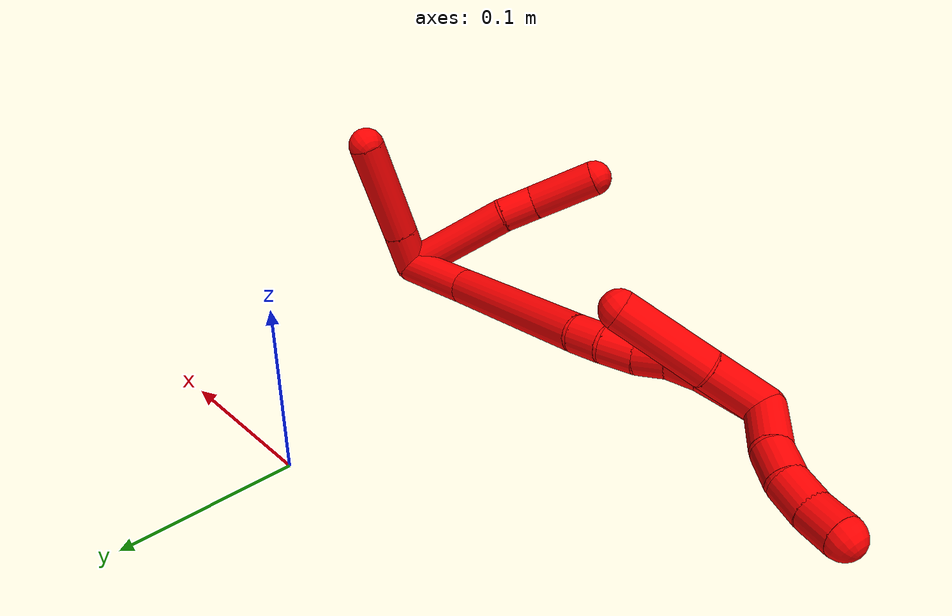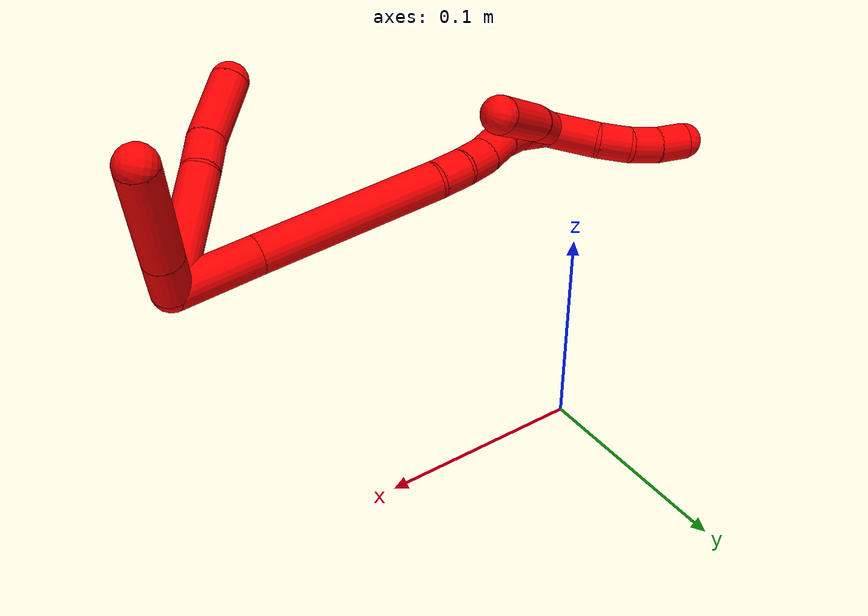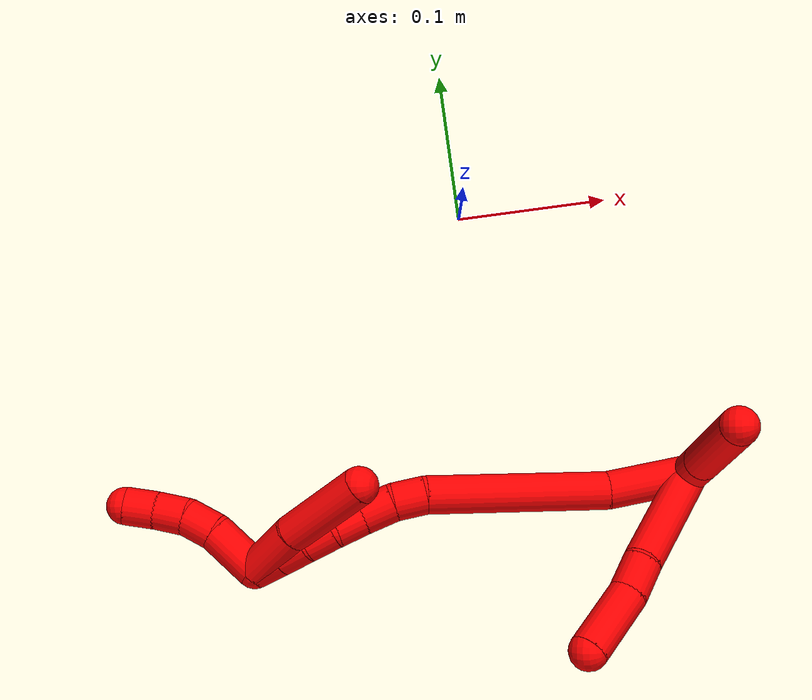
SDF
<sdf version="1.7">
 <world name="default">
  <model name="2">
   <static>0</static>
   <link name="2">
    <collision name="collision-cylinder-e_1_2_8">
     <pose>-0.034409 -0.016364 -0.009524 2.09786 -1.06776 -1.59841</pose>
     <geometry><cylinder><radius>0.0125</radius><length>0.078549</length></cylinder></geometry>
     <surface>
      <friction><ode><mu>1.16</mu><mu2>1.16</mu2><slip1>0</slip1><slip2>0</slip2></ode></friction>
      <contact><ode><kp>1e+06</kp><kd>1</kd><max_vel>0</max_vel><min_depth>0.001</min_depth></ode></contact>
     </surface>
    </collision>
    <visual name="visual-cylinder-e_1_2_8">
     <pose>-0.034409 -0.016364 -0.009524 2.09786 -1.06776 -1.59841</pose>
     <geometry><cylinder><radius>0.0125</radius><length>0.078549</length></cylinder></geometry>
     <material><ambient>1 0 0 1</ambient></material>
    </visual>
    <collision name="collision-cylinder-e_2_8_9">
     <pose>-0.078341 -0.039673 -0.022274 2.00578 -0.893503 -1.28809</pose>
     <geometry><cylinder><radius>0.0125</radius><length>0.02444</length></cylinder></geometry>
     <surface>
      <friction><ode><mu>1.16</mu><mu2>1.16</mu2><slip1>0</slip1><slip2>0</slip2></ode></friction>
      <contact><ode><kp>1e+06</kp><kd>1</kd><max_vel>0</max_vel><min_depth>0.001</min_depth></ode></contact>
     </surface>
    </collision>
    <visual name="visual-cylinder-e_2_8_9">
     <pose>-0.078341 -0.039673 -0.022274 2.00578 -0.893503 -1.28809</pose>
     <geometry><cylinder><radius>0.0125</radius><length>0.02444</length></cylinder></geometry>
     <material><ambient>1 0 0 1</ambient></material>
    </visual>
    <collision name="collision-cylinder-e_3_9_6">
     <pose>-0.107582 -0.05624 -0.033936 2.29056 -0.995199 -1.75092</pose>
     <geometry><cylinder><radius>0.0125</radius><length>0.047011</length></cylinder></geometry>
     <surface>
      <friction><ode><mu>1.16</mu><mu2>1.16</mu2><slip1>0</slip1><slip2>0</slip2></ode></friction>
      <contact><ode><kp>1e+06</kp><kd>1</kd><max_vel>0</max_vel><min_depth>0.001</min_depth></ode></contact>
     </surface>
    </collision>
    <visual name="visual-cylinder-e_3_9_6">
     <pose>-0.107582 -0.05624 -0.033936 2.29056 -0.995199 -1.75092</pose>
     <geometry><cylinder><radius>0.0125</radius><length>0.047011</length></cylinder></geometry>
     <material><ambient>1 0 0 1</ambient></material>
    </visual>
    <collision name="collision-cylinder-e_1_2_10">
     <pose>-0.009717 0.007859 0.006969 -0.845309 -0.746496 0.34868</pose>
     <geometry><cylinder><radius>0.0125</radius><length>0.028619</length></cylinder></geometry>
     <surface>
      <friction><ode><mu>1.16</mu><mu2>1.16</mu2><slip1>0</slip1><slip2>0</slip2></ode></friction>
      <contact><ode><kp>1e+06</kp><kd>1</kd><max_vel>0</max_vel><min_depth>0.001</min_depth></ode></contact>
     </surface>
    </collision>
    <visual name="visual-cylinder-e_1_2_10">
     <pose>-0.009717 0.007859 0.006969 -0.845309 -0.746496 0.34868</pose>
     <geometry><cylinder><radius>0.0125</radius><length>0.028619</length></cylinder></geometry>
     <material><ambient>1 0 0 1</ambient></material>
    </visual>
    <collision name="collision-cylinder-e_2_10_5">
     <pose>-0.04353 0.035584 0.031217 -0.854969 -0.741163 0.350386</pose>
     <geometry><cylinder><radius>0.0125</radius><length>0.071381</length></cylinder></geometry>
     <surface>
      <friction><ode><mu>1.16</mu><mu2>1.16</mu2><slip1>0</slip1><slip2>0</slip2></ode></friction>
      <contact><ode><kp>1e+06</kp><kd>1</kd><max_vel>0</max_vel><min_depth>0.001</min_depth></ode></contact>
     </surface>
    </collision>
    <visual name="visual-cylinder-e_2_10_5">
     <pose>-0.04353 0.035584 0.031217 -0.854969 -0.741163 0.350386</pose>
     <geometry><cylinder><radius>0.0125</radius><length>0.071381</length></cylinder></geometry>
     <material><ambient>1 0 0 1</ambient></material>
    </visual>
    <collision name="collision-cylinder-e_1_2_11">
     <pose>-0.012742 -0.001012 -0.0247 3.10064 -0.475945 -2.97313</pose>
     <geometry><cylinder><radius>0.0125</radius><length>0.055622</length></cylinder></geometry>
     <surface>
      <friction><ode><mu>1.16</mu><mu2>1.16</mu2><slip1>0</slip1><slip2>0</slip2></ode></friction>
      <contact><ode><kp>1e+06</kp><kd>1</kd><max_vel>0</max_vel><min_depth>0.001</min_depth></ode></contact>
     </surface>
    </collision>
    <visual name="visual-cylinder-e_1_2_11">
     <pose>-0.012742 -0.001012 -0.0247 3.10064 -0.475945 -2.97313</pose>
     <geometry><cylinder><radius>0.0125</radius><length>0.055622</length></cylinder></geometry>
     <material><ambient>1 0 0 1</ambient></material>
    </visual>
    <collision name="collision-cylinder-e_2_11_12">
     <pose>-0.055611 0.008016 -0.100928 -2.94916 -0.520967 2.44676</pose>
     <geometry><cylinder><radius>0.0125</radius><length>0.121056</length></cylinder></geometry>
     <surface>
      <friction><ode><mu>1.16</mu><mu2>1.16</mu2><slip1>0</slip1><slip2>0</slip2></ode></friction>
      <contact><ode><kp>1e+06</kp><kd>1</kd><max_vel>0</max_vel><min_depth>0.001</min_depth></ode></contact>
     </surface>
    </collision>
    <visual name="visual-cylinder-e_2_11_12">
     <pose>-0.055611 0.008016 -0.100928 -2.94916 -0.520967 2.44676</pose>
     <geometry><cylinder><radius>0.0125</radius><length>0.121056</length></cylinder></geometry>
     <material><ambient>1 0 0 1</ambient></material>
    </visual>
    <collision name="collision-cylinder-e_3_12_13">
     <pose>-0.090846 0.017548 -0.161669 3.08648 -0.505742 -2.92905</pose>
     <geometry><cylinder><radius>0.0125</radius><length>0.021091</length></cylinder></geometry>
     <surface>
      <friction><ode><mu>1.16</mu><mu2>1.16</mu2><slip1>0</slip1><slip2>0</slip2></ode></friction>
      <contact><ode><kp>1e+06</kp><kd>1</kd><max_vel>0</max_vel><min_depth>0.001</min_depth></ode></contact>
     </surface>
    </collision>
    <visual name="visual-cylinder-e_3_12_13">
     <pose>-0.090846 0.017548 -0.161669 3.08648 -0.505742 -2.92905</pose>
     <geometry><cylinder><radius>0.0125</radius><length>0.021091</length></cylinder></geometry>
     <material><ambient>1 0 0 1</ambient></material>
    </visual>
    <collision name="collision-cylinder-e_4_13_14">
     <pose>-0.101053 0.014262 -0.180284 2.8544 -0.479519 -2.07335</pose>
     <geometry><cylinder><radius>0.0125</radius><length>0.022102</length></cylinder></geometry>
     <surface>
      <friction><ode><mu>1.16</mu><mu2>1.16</mu2><slip1>0</slip1><slip2>0</slip2></ode></friction>
      <contact><ode><kp>1e+06</kp><kd>1</kd><max_vel>0</max_vel><min_depth>0.001</min_depth></ode></contact>
     </surface>
    </collision>
    <visual name="visual-cylinder-e_4_13_14">
     <pose>-0.101053 0.014262 -0.180284 2.8544 -0.479519 -2.07335</pose>
     <geometry><cylinder><radius>0.0125</radius><length>0.022102</length></cylinder></geometry>
     <material><ambient>1 0 0 1</ambient></material>
    </visual>
    <collision name="collision-cylinder-e_5_14_15">
     <pose>-0.112433 0.009345 -0.197196 2.86392 -0.677433 -2.38637</pose>
     <geometry><cylinder><radius>0.0125</radius><length>0.020044</length></cylinder></geometry>
     <surface>
      <friction><ode><mu>1.16</mu><mu2>1.16</mu2><slip1>0</slip1><slip2>0</slip2></ode></friction>
      <contact><ode><kp>1e+06</kp><kd>1</kd><max_vel>0</max_vel><min_depth>0.001</min_depth></ode></contact>
     </surface>
    </collision>
    <visual name="visual-cylinder-e_5_14_15">
     <pose>-0.112433 0.009345 -0.197196 2.86392 -0.677433 -2.38637</pose>
     <geometry><cylinder><radius>0.0125</radius><length>0.020044</length></cylinder></geometry>
     <material><ambient>1 0 0 1</ambient></material>
    </visual>
    <collision name="collision-cylinder-e_6_15_16">
     <pose>-0.122511 0.003875 -0.213344 2.77379 -0.389183 -1.62865</pose>
     <geometry><cylinder><radius>0.0125</radius><length>0.020012</length></cylinder></geometry>
     <surface>
      <friction><ode><mu>1.16</mu><mu2>1.16</mu2><slip1>0</slip1><slip2>0</slip2></ode></friction>
      <contact><ode><kp>1e+06</kp><kd>1</kd><max_vel>0</max_vel><min_depth>0.001</min_depth></ode></contact>
     </surface>
    </collision>
    <visual name="visual-cylinder-e_6_15_16">
     <pose>-0.122511 0.003875 -0.213344 2.77379 -0.389183 -1.62865</pose>
     <geometry><cylinder><radius>0.0125</radius><length>0.020012</length></cylinder></geometry>
     <material><ambient>1 0 0 1</ambient></material>
    </visual>
    <collision name="collision-cylinder-e_7_16_17">
     <pose>-0.128253 -0.003372 -0.230975 2.73058 -0.195772 -0.880516</pose>
     <geometry><cylinder><radius>0.0125</radius><length>0.02</length></cylinder></geometry>
     <surface>
      <friction><ode><mu>1.16</mu><mu2>1.16</mu2><slip1>0</slip1><slip2>0</slip2></ode></friction>
      <contact><ode><kp>1e+06</kp><kd>1</kd><max_vel>0</max_vel><min_depth>0.001</min_depth></ode></contact>
     </surface>
    </collision>
    <visual name="visual-cylinder-e_7_16_17">
     <pose>-0.128253 -0.003372 -0.230975 2.73058 -0.195772 -0.880516</pose>
     <geometry><cylinder><radius>0.0125</radius><length>0.02</length></cylinder></geometry>
     <material><ambient>1 0 0 1</ambient></material>
    </visual>
    <collision name="collision-cylinder-e_8_17_1">
     <pose>-0.132115 -0.011148 -0.249033 2.73937 -0.1922 -0.883376</pose>
     <geometry><cylinder><radius>0.0125</radius><length>0.020073</length></cylinder></geometry>
     <surface>
      <friction><ode><mu>1.16</mu><mu2>1.16</mu2><slip1>0</slip1><slip2>0</slip2></ode></friction>
      <contact><ode><kp>1e+06</kp><kd>1</kd><max_vel>0</max_vel><min_depth>0.001</min_depth></ode></contact>
     </surface>
    </collision>
    <visual name="visual-cylinder-e_8_17_1">
     <pose>-0.132115 -0.011148 -0.249033 2.73937 -0.1922 -0.883376</pose>
     <geometry><cylinder><radius>0.0125</radius><length>0.020073</length></cylinder></geometry>
     <material><ambient>1 0 0 1</ambient></material>
    </visual>
    <collision name="collision-cylinder-e_1_1_18">
     <pose>-0.132669 -0.00281 -0.271178 -2.39118 0.076114 -0.192744</pose>
     <geometry><cylinder><radius>0.0125</radius><length>0.03587</length></cylinder></geometry>
     <surface>
      <friction><ode><mu>1.16</mu><mu2>1.16</mu2><slip1>0</slip1><slip2>0</slip2></ode></friction>
      <contact><ode><kp>1e+06</kp><kd>1</kd><max_vel>0</max_vel><min_depth>0.001</min_depth></ode></contact>
     </surface>
    </collision>
    <visual name="visual-cylinder-e_1_1_18">
     <pose>-0.132669 -0.00281 -0.271178 -2.39118 0.076114 -0.192744</pose>
     <geometry><cylinder><radius>0.0125</radius><length>0.03587</length></cylinder></geometry>
     <material><ambient>1 0 0 1</ambient></material>
    </visual>
    <collision name="collision-cylinder-e_2_18_19">
     <pose>-0.131419 0.014699 -0.293757 -2.63158 -0.010523 0.040363</pose>
     <geometry><cylinder><radius>0.0125</radius><length>0.021769</length></cylinder></geometry>
     <surface>
      <friction><ode><mu>1.16</mu><mu2>1.16</mu2><slip1>0</slip1><slip2>0</slip2></ode></friction>
      <contact><ode><kp>1e+06</kp><kd>1</kd><max_vel>0</max_vel><min_depth>0.001</min_depth></ode></contact>
     </surface>
    </collision>
    <visual name="visual-cylinder-e_2_18_19">
     <pose>-0.131419 0.014699 -0.293757 -2.63158 -0.010523 0.040363</pose>
     <geometry><cylinder><radius>0.0125</radius><length>0.021769</length></cylinder></geometry>
     <material><ambient>1 0 0 1</ambient></material>
    </visual>
    <collision name="collision-cylinder-e_3_19_20">
     <pose>-0.133086 0.022857 -0.313395 -2.86808 -0.146303 0.978638</pose>
     <geometry><cylinder><radius>0.0125</radius><length>0.02129</length></cylinder></geometry>
     <surface>
      <friction><ode><mu>1.16</mu><mu2>1.16</mu2><slip1>0</slip1><slip2>0</slip2></ode></friction>
      <contact><ode><kp>1e+06</kp><kd>1</kd><max_vel>0</max_vel><min_depth>0.001</min_depth></ode></contact>
     </surface>
    </collision>
    <visual name="visual-cylinder-e_3_19_20">
     <pose>-0.133086 0.022857 -0.313395 -2.86808 -0.146303 0.978638</pose>
     <geometry><cylinder><radius>0.0125</radius><length>0.02129</length></cylinder></geometry>
     <material><ambient>1 0 0 1</ambient></material>
    </visual>
    <collision name="collision-cylinder-e_4_20_4">
     <pose>-0.137853 0.028564 -0.333151 -2.85222 -0.310185 1.64125</pose>
     <geometry><cylinder><radius>0.0125</radius><length>0.021071</length></cylinder></geometry>
     <surface>
      <friction><ode><mu>1.16</mu><mu2>1.16</mu2><slip1>0</slip1><slip2>0</slip2></ode></friction>
      <contact><ode><kp>1e+06</kp><kd>1</kd><max_vel>0</max_vel><min_depth>0.001</min_depth></ode></contact>
     </surface>
    </collision>
    <visual name="visual-cylinder-e_4_20_4">
     <pose>-0.137853 0.028564 -0.333151 -2.85222 -0.310185 1.64125</pose>
     <geometry><cylinder><radius>0.0125</radius><length>0.021071</length></cylinder></geometry>
     <material><ambient>1 0 0 1</ambient></material>
    </visual>
    <collision name="collision-cylinder-e_1_1_21">
     <pose>-0.134037 -0.002264 -0.242417 -0.682316 -0.000215 7.6e-05</pose>
     <geometry><cylinder><radius>0.0125</radius><length>0.04041</length></cylinder></geometry>
     <surface>
      <friction><ode><mu>1.16</mu><mu2>1.16</mu2><slip1>0</slip1><slip2>0</slip2></ode></friction>
      <contact><ode><kp>1e+06</kp><kd>1</kd><max_vel>0</max_vel><min_depth>0.001</min_depth></ode></contact>
     </surface>
    </collision>
    <visual name="visual-cylinder-e_1_1_21">
     <pose>-0.134037 -0.002264 -0.242417 -0.682316 -0.000215 7.6e-05</pose>
     <geometry><cylinder><radius>0.0125</radius><length>0.04041</length></cylinder></geometry>
     <material><ambient>1 0 0 1</ambient></material>
    </visual>
    <collision name="collision-cylinder-e_2_21_3">
     <pose>-0.132598 0.026079 -0.201392 -0.551812 0.048457 -0.013722</pose>
     <geometry><cylinder><radius>0.0125</radius><length>0.05959</length></cylinder></geometry>
     <surface>
      <friction><ode><mu>1.16</mu><mu2>1.16</mu2><slip1>0</slip1><slip2>0</slip2></ode></friction>
      <contact><ode><kp>1e+06</kp><kd>1</kd><max_vel>0</max_vel><min_depth>0.001</min_depth></ode></contact>
     </surface>
    </collision>
    <visual name="visual-cylinder-e_2_21_3">
     <pose>-0.132598 0.026079 -0.201392 -0.551812 0.048457 -0.013722</pose>
     <geometry><cylinder><radius>0.0125</radius><length>0.05959</length></cylinder></geometry>
     <material><ambient>1 0 0 1</ambient></material>
    </visual>
    <collision name="collision-sphere-3">
     <pose>-0.131155 0.04168 -0.17605 0 -0 0</pose>
     <geometry><sphere><radius>0.0125</radius></sphere></geometry>
     <surface>
      <friction><ode><mu>1.16</mu><mu2>1.16</mu2><slip1>0</slip1><slip2>0</slip2></ode></friction>
      <contact><ode><kp>1e+06</kp><kd>1</kd><max_vel>0</max_vel><min_depth>0.001</min_depth></ode></contact>
     </surface>
    </collision>
    <visual name="visual-sphere-3">
     <pose>-0.131155 0.04168 -0.17605 0 -0 0</pose>
     <geometry><sphere><radius>0.0125</radius></sphere></geometry>
     <material><ambient>1 0 0 1</ambient></material>
    </visual>
    <collision name="collision-sphere-21">
     <pose>-0.134041 0.010477 -0.226735 0 -0 0</pose>
     <geometry><sphere><radius>0.0125</radius></sphere></geometry>
     <surface>
      <friction><ode><mu>1.16</mu><mu2>1.16</mu2><slip1>0</slip1><slip2>0</slip2></ode></friction>
      <contact><ode><kp>1e+06</kp><kd>1</kd><max_vel>0</max_vel><min_depth>0.001</min_depth></ode></contact>
     </surface>
    </collision>
    <visual name="visual-sphere-21">
     <pose>-0.134041 0.010477 -0.226735 0 -0 0</pose>
     <geometry><sphere><radius>0.0125</radius></sphere></geometry>
     <material><ambient>1 0 0 1</ambient></material>
    </visual>
    <collision name="collision-sphere-4">
     <pose>-0.141069 0.031427 -0.342766 0 -0 0</pose>
     <geometry><sphere><radius>0.0125</radius></sphere></geometry>
     <surface>
      <friction><ode><mu>1.16</mu><mu2>1.16</mu2><slip1>0</slip1><slip2>0</slip2></ode></friction>
      <contact><ode><kp>1e+06</kp><kd>1</kd><max_vel>0</max_vel><min_depth>0.001</min_depth></ode></contact>
     </surface>
    </collision>
    <visual name="visual-sphere-4">
     <pose>-0.141069 0.031427 -0.342766 0 -0 0</pose>
     <geometry><sphere><radius>0.0125</radius></sphere></geometry>
     <material><ambient>1 0 0 1</ambient></material>
    </visual>
    <collision name="collision-sphere-20">
     <pose>-0.134638 0.025702 -0.323535 0 -0 0</pose>
     <geometry><sphere><radius>0.0125</radius></sphere></geometry>
     <surface>
      <friction><ode><mu>1.16</mu><mu2>1.16</mu2><slip1>0</slip1><slip2>0</slip2></ode></friction>
      <contact><ode><kp>1e+06</kp><kd>1</kd><max_vel>0</max_vel><min_depth>0.001</min_depth></ode></contact>
     </surface>
    </collision>
    <visual name="visual-sphere-20">
     <pose>-0.134638 0.025702 -0.323535 0 -0 0</pose>
     <geometry><sphere><radius>0.0125</radius></sphere></geometry>
     <material><ambient>1 0 0 1</ambient></material>
    </visual>
    <collision name="collision-sphere-5">
     <pose>-0.067627 0.05545 0.048495 0 -0 0</pose>
     <geometry><sphere><radius>0.0125</radius></sphere></geometry>
     <surface>
      <friction><ode><mu>1.16</mu><mu2>1.16</mu2><slip1>0</slip1><slip2>0</slip2></ode></friction>
      <contact><ode><kp>1e+06</kp><kd>1</kd><max_vel>0</max_vel><min_depth>0.001</min_depth></ode></contact>
     </surface>
    </collision>
    <visual name="visual-sphere-5">
     <pose>-0.067627 0.05545 0.048495 0 -0 0</pose>
     <geometry><sphere><radius>0.0125</radius></sphere></geometry>
     <material><ambient>1 0 0 1</ambient></material>
    </visual>
    <collision name="collision-sphere-10">
     <pose>-0.019434 0.015718 0.013939 0 -0 0</pose>
     <geometry><sphere><radius>0.0125</radius></sphere></geometry>
     <surface>
      <friction><ode><mu>1.16</mu><mu2>1.16</mu2><slip1>0</slip1><slip2>0</slip2></ode></friction>
      <contact><ode><kp>1e+06</kp><kd>1</kd><max_vel>0</max_vel><min_depth>0.001</min_depth></ode></contact>
     </surface>
    </collision>
    <visual name="visual-sphere-10">
     <pose>-0.019434 0.015718 0.013939 0 -0 0</pose>
     <geometry><sphere><radius>0.0125</radius></sphere></geometry>
     <material><ambient>1 0 0 1</ambient></material>
    </visual>
    <collision name="collision-sphere-6">
     <pose>-0.1273 -0.065861 -0.04237 0 -0 0</pose>
     <geometry><sphere><radius>0.0125</radius></sphere></geometry>
     <surface>
      <friction><ode><mu>1.16</mu><mu2>1.16</mu2><slip1>0</slip1><slip2>0</slip2></ode></friction>
      <contact><ode><kp>1e+06</kp><kd>1</kd><max_vel>0</max_vel><min_depth>0.001</min_depth></ode></contact>
     </surface>
    </collision>
    <visual name="visual-sphere-6">
     <pose>-0.1273 -0.065861 -0.04237 0 -0 0</pose>
     <geometry><sphere><radius>0.0125</radius></sphere></geometry>
     <material><ambient>1 0 0 1</ambient></material>
    </visual>
    <collision name="collision-sphere-9">
     <pose>-0.087864 -0.046618 -0.025502 0 -0 0</pose>
     <geometry><sphere><radius>0.0125</radius></sphere></geometry>
     <surface>
      <friction><ode><mu>1.16</mu><mu2>1.16</mu2><slip1>0</slip1><slip2>0</slip2></ode></friction>
      <contact><ode><kp>1e+06</kp><kd>1</kd><max_vel>0</max_vel><min_depth>0.001</min_depth></ode></contact>
     </surface>
    </collision>
    <visual name="visual-sphere-9">
     <pose>-0.087864 -0.046618 -0.025502 0 -0 0</pose>
     <geometry><sphere><radius>0.0125</radius></sphere></geometry>
     <material><ambient>1 0 0 1</ambient></material>
    </visual>
    <collision name="collision-sphere-2">
     <geometry><sphere><radius>0.0125</radius></sphere></geometry>
     <surface>
      <friction><ode><mu>1.16</mu><mu2>1.16</mu2><slip1>0</slip1><slip2>0</slip2></ode></friction>
      <contact><ode><kp>1e+06</kp><kd>1</kd><max_vel>0</max_vel><min_depth>0.001</min_depth></ode></contact>
     </surface>
    </collision>
    <visual name="visual-sphere-2">
     <geometry><sphere><radius>0.0125</radius></sphere></geometry>
     <material><ambient>1 0 0 1</ambient></material>
    </visual>
    <collision name="collision-sphere-19">
     <pose>-0.131534 0.020012 -0.303256 0 -0 0</pose>
     <geometry><sphere><radius>0.0125</radius></sphere></geometry>
     <surface>
      <friction><ode><mu>1.16</mu><mu2>1.16</mu2><slip1>0</slip1><slip2>0</slip2></ode></friction>
      <contact><ode><kp>1e+06</kp><kd>1</kd><max_vel>0</max_vel><min_depth>0.001</min_depth></ode></contact>
     </surface>
    </collision>
    <visual name="visual-sphere-19">
     <pose>-0.131534 0.020012 -0.303256 0 -0 0</pose>
     <geometry><sphere><radius>0.0125</radius></sphere></geometry>
     <material><ambient>1 0 0 1</ambient></material>
    </visual>
    <collision name="collision-sphere-8">
     <pose>-0.068818 -0.032728 -0.019047 0 -0 0</pose>
     <geometry><sphere><radius>0.0125</radius></sphere></geometry>
     <surface>
      <friction><ode><mu>1.16</mu><mu2>1.16</mu2><slip1>0</slip1><slip2>0</slip2></ode></friction>
      <contact><ode><kp>1e+06</kp><kd>1</kd><max_vel>0</max_vel><min_depth>0.001</min_depth></ode></contact>
     </surface>
    </collision>
    <visual name="visual-sphere-8">
     <pose>-0.068818 -0.032728 -0.019047 0 -0 0</pose>
     <geometry><sphere><radius>0.0125</radius></sphere></geometry>
     <material><ambient>1 0 0 1</ambient></material>
    </visual>
    <collision name="collision-sphere-11">
     <pose>-0.025485 -0.002024 -0.049399 0 -0 0</pose>
     <geometry><sphere><radius>0.0125</radius></sphere></geometry>
     <surface>
      <friction><ode><mu>1.16</mu><mu2>1.16</mu2><slip1>0</slip1><slip2>0</slip2></ode></friction>
      <contact><ode><kp>1e+06</kp><kd>1</kd><max_vel>0</max_vel><min_depth>0.001</min_depth></ode></contact>
     </surface>
    </collision>
    <visual name="visual-sphere-11">
     <pose>-0.025485 -0.002024 -0.049399 0 -0 0</pose>
     <geometry><sphere><radius>0.0125</radius></sphere></geometry>
     <material><ambient>1 0 0 1</ambient></material>
    </visual>
    <collision name="collision-sphere-12">
     <pose>-0.085737 0.018056 -0.152458 0 -0 0</pose>
     <geometry><sphere><radius>0.0125</radius></sphere></geometry>
     <surface>
      <friction><ode><mu>1.16</mu><mu2>1.16</mu2><slip1>0</slip1><slip2>0</slip2></ode></friction>
      <contact><ode><kp>1e+06</kp><kd>1</kd><max_vel>0</max_vel><min_depth>0.001</min_depth></ode></contact>
     </surface>
    </collision>
    <visual name="visual-sphere-12">
     <pose>-0.085737 0.018056 -0.152458 0 -0 0</pose>
     <geometry><sphere><radius>0.0125</radius></sphere></geometry>
     <material><ambient>1 0 0 1</ambient></material>
    </visual>
    <collision name="collision-sphere-13">
     <pose>-0.095955 0.017039 -0.170881 0 -0 0</pose>
     <geometry><sphere><radius>0.0125</radius></sphere></geometry>
     <surface>
      <friction><ode><mu>1.16</mu><mu2>1.16</mu2><slip1>0</slip1><slip2>0</slip2></ode></friction>
      <contact><ode><kp>1e+06</kp><kd>1</kd><max_vel>0</max_vel><min_depth>0.001</min_depth></ode></contact>
     </surface>
    </collision>
    <visual name="visual-sphere-13">
     <pose>-0.095955 0.017039 -0.170881 0 -0 0</pose>
     <geometry><sphere><radius>0.0125</radius></sphere></geometry>
     <material><ambient>1 0 0 1</ambient></material>
    </visual>
    <collision name="collision-sphere-14">
     <pose>-0.106151 0.011485 -0.189686 0 -0 0</pose>
     <geometry><sphere><radius>0.0125</radius></sphere></geometry>
     <surface>
      <friction><ode><mu>1.16</mu><mu2>1.16</mu2><slip1>0</slip1><slip2>0</slip2></ode></friction>
      <contact><ode><kp>1e+06</kp><kd>1</kd><max_vel>0</max_vel><min_depth>0.001</min_depth></ode></contact>
     </surface>
    </collision>
    <visual name="visual-sphere-14">
     <pose>-0.106151 0.011485 -0.189686 0 -0 0</pose>
     <geometry><sphere><radius>0.0125</radius></sphere></geometry>
     <material><ambient>1 0 0 1</ambient></material>
    </visual>
    <collision name="collision-sphere-15">
     <pose>-0.118715 0.007204 -0.204706 0 -0 0</pose>
     <geometry><sphere><radius>0.0125</radius></sphere></geometry>
     <surface>
      <friction><ode><mu>1.16</mu><mu2>1.16</mu2><slip1>0</slip1><slip2>0</slip2></ode></friction>
      <contact><ode><kp>1e+06</kp><kd>1</kd><max_vel>0</max_vel><min_depth>0.001</min_depth></ode></contact>
     </surface>
    </collision>
    <visual name="visual-sphere-15">
     <pose>-0.118715 0.007204 -0.204706 0 -0 0</pose>
     <geometry><sphere><radius>0.0125</radius></sphere></geometry>
     <material><ambient>1 0 0 1</ambient></material>
    </visual>
    <collision name="collision-sphere-16">
     <pose>-0.126308 0.000547 -0.221983 0 -0 0</pose>
     <geometry><sphere><radius>0.0125</radius></sphere></geometry>
     <surface>
      <friction><ode><mu>1.16</mu><mu2>1.16</mu2><slip1>0</slip1><slip2>0</slip2></ode></friction>
      <contact><ode><kp>1e+06</kp><kd>1</kd><max_vel>0</max_vel><min_depth>0.001</min_depth></ode></contact>
     </surface>
    </collision>
    <visual name="visual-sphere-16">
     <pose>-0.126308 0.000547 -0.221983 0 -0 0</pose>
     <geometry><sphere><radius>0.0125</radius></sphere></geometry>
     <material><ambient>1 0 0 1</ambient></material>
    </visual>
    <collision name="collision-sphere-17">
     <pose>-0.130198 -0.007292 -0.239967 0 -0 0</pose>
     <geometry><sphere><radius>0.0125</radius></sphere></geometry>
     <surface>
      <friction><ode><mu>1.16</mu><mu2>1.16</mu2><slip1>0</slip1><slip2>0</slip2></ode></friction>
      <contact><ode><kp>1e+06</kp><kd>1</kd><max_vel>0</max_vel><min_depth>0.001</min_depth></ode></contact>
     </surface>
    </collision>
    <visual name="visual-sphere-17">
     <pose>-0.130198 -0.007292 -0.239967 0 -0 0</pose>
     <geometry><sphere><radius>0.0125</radius></sphere></geometry>
     <material><ambient>1 0 0 1</ambient></material>
    </visual>
    <collision name="collision-sphere-1">
     <pose>-0.134032 -0.015005 -0.258098 0 -0 0</pose>
     <geometry><sphere><radius>0.0125</radius></sphere></geometry>
     <surface>
      <friction><ode><mu>1.16</mu><mu2>1.16</mu2><slip1>0</slip1><slip2>0</slip2></ode></friction>
      <contact><ode><kp>1e+06</kp><kd>1</kd><max_vel>0</max_vel><min_depth>0.001</min_depth></ode></contact>
     </surface>
    </collision>
    <visual name="visual-sphere-1">
     <pose>-0.134032 -0.015005 -0.258098 0 -0 0</pose>
     <geometry><sphere><radius>0.0125</radius></sphere></geometry>
     <material><ambient>1 0 0 1</ambient></material>
    </visual>
    <collision name="collision-sphere-18">
     <pose>-0.131305 0.009386 -0.284258 0 -0 0</pose>
     <geometry><sphere><radius>0.0125</radius></sphere></geometry>
     <surface>
      <friction><ode><mu>1.16</mu><mu2>1.16</mu2><slip1>0</slip1><slip2>0</slip2></ode></friction>
      <contact><ode><kp>1e+06</kp><kd>1</kd><max_vel>0</max_vel><min_depth>0.001</min_depth></ode></contact>
     </surface>
    </collision>
    <visual name="visual-sphere-18">
     <pose>-0.131305 0.009386 -0.284258 0 -0 0</pose>
     <geometry><sphere><radius>0.0125</radius></sphere></geometry>
     <material><ambient>1 0 0 1</ambient></material>
    </visual>
    <inertial>
     <pose>-0.081665 0.002946 -0.121197 0 -0 0</pose>
     <mass>0.75</mass>
     <inertia>
      <ixx>-2.6e-05</ixx>
      <ixy>0</ixy>
      <ixz>0</ixz>
      <iyy>0.000296</iyy>
      <iyz>0</iyz>
      <izz>0.000101</izz>
     </inertia>
    </inertial>
   </link>
   <pose>0.12647 -0.191452 0.012296 0.73347 1.02814 0.669194</pose>
  </model>
 </world>
</sdf>
